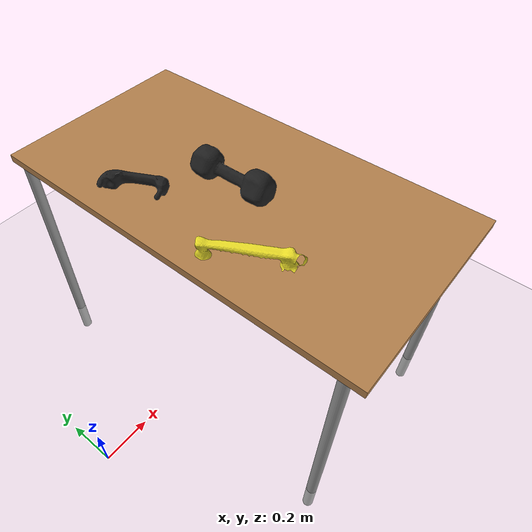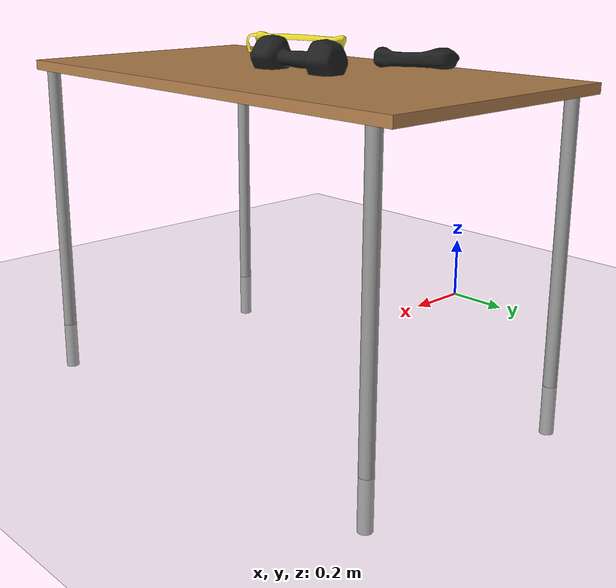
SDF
<?xml version="1.0"?>
<sdf version="1.4">
  <world name="r2b_upperbody_empty">
    <scene>
      <ambient>0 0 0 1</ambient>
      <shadows>0</shadows>
      <grid>1</grid>
    </scene>

    <include>
      <uri>model://sun</uri>
    </include>
    <include>
      <uri>model://ground_plane</uri>
    </include>
    <include>
      <uri>model://table</uri>
      <pose>0.8 0.0 -0.15 0 0 1.57</pose>
    </include>
    <include>
      <uri>model://handrail</uri>
      <pose>0.55 -0.25 .9 0 0 0.5</pose>
    </include>
    <include>
      <uri>model://handle</uri>
      <pose>0.55 0.25 .9 0 0 0.5</pose>
    </include>
    <include>
      <uri>model://weight20</uri>
      <pose>0.8 0.025 .9 0 0 0.0</pose>
    </include>

    <!-- A global light source -->
    <light type="point" name="point_white1">
      <cast_shadows>0</cast_shadows>
      <pose>2.6 .3 3 0 0 0</pose>
      <diffuse>0.8 0.8 0.8 1</diffuse>
      <specular>.1 .1 .1 1</specular>
      <attenuation>
        <range>20</range>
        <constant>0.2</constant>
        <linear>0.1</linear>
        <quadratic>0.0</quadratic>
      </attenuation>
    </light>
    <light type="point" name="point_white2">
      <cast_shadows>0</cast_shadows>
      <pose>-2.6 .3 3 0 0 0</pose>
      <diffuse>0.3 0.3 0.3 1</diffuse>
      <specular>.1 .1 .1 1</specular>
      <attenuation>
        <range>20</range>
        <constant>0.2</constant>
        <linear>0.1</linear>
        <quadratic>0.0</quadratic>
      </attenuation>
    </light>

  </world>
</sdf>

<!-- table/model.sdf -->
<sdf version="1.5">
  <model name="table">
    <static>true</static>
    <link name="link">
      <collision name="surface">
        <pose>0 0 1.0 0 0 0</pose>
        <geometry>
          <box>
            <size>1.5 0.8 0.03</size>
          </box>
        </geometry>
        <surface>
          <friction>
            <ode>
              <mu>0.6</mu>
              <mu2>0.6</mu2>
            </ode>
          </friction>
        </surface>
      </collision>
      <visual name="visual1">
        <pose>0 0 1.0 0 0 0</pose>
        <geometry>
          <box>
            <size>1.5 0.8 0.03</size>
          </box>
        </geometry>
        <material>
          <script>
            <uri>model://media/materials/scripts/gazebo.material</uri>
            <name>Gazebo/Wood</name>
          </script>
        </material>
      </visual>
      <collision name="front_left_leg">
        <pose>0.68 0.38 0.5 0 0 0</pose>
        <geometry>
          <cylinder>
            <radius>0.02</radius>
            <length>1.0</length>
          </cylinder>
        </geometry>
      </collision>
      <visual name="front_left_leg">
        <pose>0.68 0.38 0.5 0 0 0</pose>
        <geometry>
          <cylinder>
            <radius>0.02</radius>
            <length>1.0</length>
          </cylinder>
        </geometry>
        <material>
          <script>
            <uri>model://media/materials/scripts/gazebo.material</uri>
            <name>Gazebo/Grey</name>
          </script>
        </material>
      </visual>
      <collision name="front_right_leg">
        <pose>0.68 -0.38 0.5 0 0 0</pose>
        <geometry>
          <cylinder>
            <radius>0.02</radius>
            <length>1.0</length>
          </cylinder>
        </geometry>
      </collision>
      <visual name="front_right_leg">
        <pose>0.68 -0.38 0.5 0 0 0</pose>
        <geometry>
          <cylinder>
            <radius>0.02</radius>
            <length>1.0</length>
          </cylinder>
        </geometry>
        <material>
          <script>
            <uri>model://media/materials/scripts/gazebo.material</uri>
            <name>Gazebo/Grey</name>
          </script>
        </material>
      </visual>
      <collision name="back_right_leg">
        <pose>-0.68 -0.38 0.5 0 0 0</pose>
        <geometry>
          <cylinder>
            <radius>0.02</radius>
            <length>1.0</length>
          </cylinder>
        </geometry>
      </collision>
      <visual name="back_right_leg">
        <pose>-0.68 -0.38 0.5 0 0 0</pose>
        <geometry>
          <cylinder>
            <radius>0.02</radius>
            <length>1.0</length>
          </cylinder>
        </geometry>
        <material>
          <script>
            <uri>model://media/materials/scripts/gazebo.material</uri>
            <name>Gazebo/Grey</name>
          </script>
        </material>
      </visual>
      <collision name="back_left_leg">
        <pose>-0.68 0.38 0.5 0 0 0</pose>
        <geometry>
          <cylinder>
            <radius>0.02</radius>
            <length>1.0</length>
          </cylinder>
        </geometry>
      </collision>
      <visual name="back_left_leg">
        <pose>-0.68 0.38 0.5 0 0 0</pose>
        <geometry>
          <cylinder>
            <radius>0.02</radius>
            <length>1.0</length>
          </cylinder>
        </geometry>
        <material>
          <script>
            <uri>model://media/materials/scripts/gazebo.material</uri>
            <name>Gazebo/Grey</name>
          </script>
        </material>
      </visual>
    </link>
  </model>
</sdf>

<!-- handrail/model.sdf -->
<sdf version='1.5'>
  <model name='handrail_model'>
    <link name='handrail'>
      <pose>0 0 0 0 -0 0</pose>
      <inertial>
        <pose>0 0.015 0 0 -0 0</pose>
        <mass>0.36</mass>
        <inertia>
          <ixx>1</ixx>
          <ixy>0</ixy>
          <ixz>0</ixz>
          <iyy>1</iyy>
          <iyz>0</iyz>
          <izz>1</izz>
        </inertia>
      </inertial>
      <collision name='handrail_collision'>
        <pose>0 0 0 1.57 -5.55112e-17 1.57</pose>
        <geometry>
          <mesh>
            <scale>1 1 1</scale>
            <uri>model://handrail//meshes//handrail.dae</uri>
          </mesh>
        </geometry>
        <surface>
          <contact>
            <ode/>
          </contact>
          <friction>
            <ode/>
          </friction>
        </surface>
      </collision>
      <visual name='handrail_visual'>
        <pose>0 0 0 1.57 -5.55112e-17 1.57</pose>
        <geometry>
          <mesh>
            <scale>1 1 1</scale>
            <uri>model://handrail//meshes//handrail.dae</uri>
          </mesh>
        </geometry>
        <material>
          <script>
            <name>Gazebo/Yellow</name>
            <uri>__default__</uri>
          </script>
        </material>
      </visual>
    </link>
  </model>
</sdf>

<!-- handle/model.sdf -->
<sdf version='1.5'>
  <model name='handle_model'>
    <link name='handle'>
      <pose>0 0 0 0 -0 0</pose>
      <inertial>
        <pose>0 0.012 0 0 -0 0</pose>
        <mass>0.2</mass>
        <inertia>
          <ixx>1</ixx>
          <ixy>0</ixy>
          <ixz>0</ixz>
          <iyy>1</iyy>
          <iyz>0</iyz>
          <izz>1</izz>
        </inertia>
      </inertial>
      <collision name='handle_collision'>
        <pose>0 0 0 1.57 -5.55112e-17 1.57</pose>
        <geometry>
          <mesh>
            <scale>1 1 1</scale>
            <uri>model://handle//meshes//handle.dae</uri>
          </mesh>
        </geometry>
        <surface>
          <contact>
            <ode/>
          </contact>
          <friction>
            <ode/>
          </friction>
        </surface>
      </collision>
      <visual name='handle_visual'>
        <pose>0 0 0 1.57 -5.55112e-17 1.57</pose>
        <geometry>
          <mesh>
            <scale>1 1 1</scale>
            <uri>model://handle//meshes//handle.dae</uri>
          </mesh>
        </geometry>
        <material>
          <script>
            <name>Gazebo/Black</name>
            <uri>__default__</uri>
          </script>
        </material>
      </visual>
    </link>
  </model>
</sdf>

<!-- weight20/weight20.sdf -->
<sdf version='1.4'>
  <model name='weight20_model'>
    <link name='weight20'>
      <pose>0 0 0 0 -0 0</pose>
      <inertial>
        <pose>0 0.04 0 0 -0 0</pose>
        <mass>9.07</mass>
        <inertia>
          <ixx>1</ixx>
          <ixy>0</ixy>
          <ixz>0</ixz>
          <iyy>1</iyy>
          <iyz>0</iyz>
          <izz>1</izz>
        </inertia>
      </inertial>
      <collision name='weight20_collision'>
        <pose>0 0 0 1.57 -5.55112e-17 1.57</pose>
        <geometry>
          <mesh>
            <scale>1 1 1</scale>
            <uri>model://weight20/meshes/weight20.dae</uri>
          </mesh>
        </geometry>
        <surface>
          <contact>
            <ode/>
          </contact>
          <friction>
            <ode/>
          </friction>
        </surface>
      </collision>
      <visual name='weight20_visual'>
        <pose>0 0 0 1.57 -5.55112e-17 1.57</pose>
        <geometry>
          <mesh>
            <scale>1 1 1</scale>
            <uri>model://weight20/meshes/weight20.dae</uri>
          </mesh>
        </geometry>
        <material>
          <script>
            <name>Gazebo/Black</name>
            <uri>__default__</uri>
          </script>
        </material>
      </visual>
      <gravity>1</gravity>
      <velocity_decay>
        <linear>0</linear>
        <angular>0</angular>
      </velocity_decay>
      <self_collide>0</self_collide>
    </link>
  </model>
</sdf>
